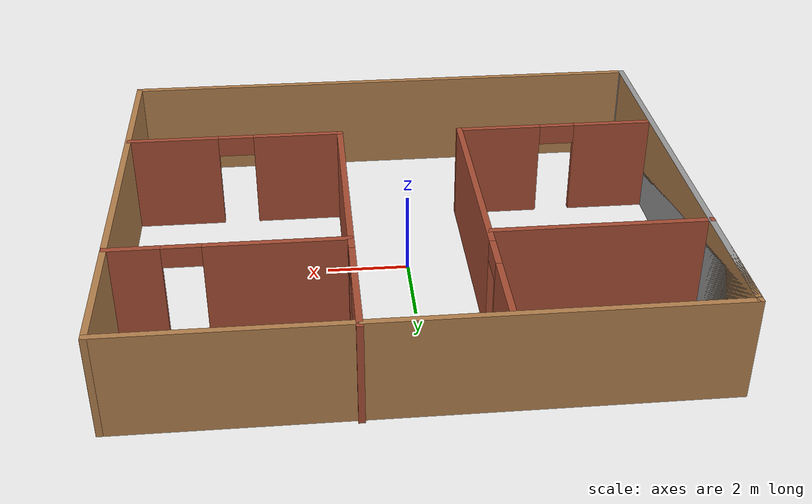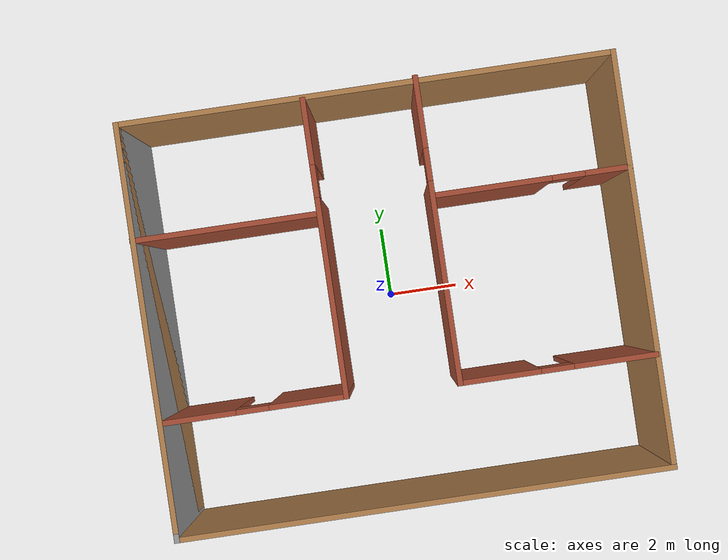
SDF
<?xml version='1.0'?>
<sdf version='1.7'>
  <model name='my_florr'>
    <pose>0.106245 -0.028154 0 0 -0 0</pose>
    <link name='Wall_0'>
      <collision name='Wall_0_Collision'>
        <geometry>
          <box>
            <size>11.25 0.15 2.5</size>
          </box>
        </geometry>
        <pose>0 0 1.25 0 -0 0</pose>
      </collision>
      <visual name='Wall_0_Visual'>
        <pose>0 0 1.25 0 -0 0</pose>
        <geometry>
          <box>
            <size>11.25 0.15 2.5</size>
          </box>
        </geometry>
        <material>
          <script>
            <uri>file://media/materials/scripts/gazebo.material</uri>
            <name>Gazebo/Wood</name>
          </script>
          <ambient>1 1 1 1</ambient>
        </material>
        <meta>
          <layer>0</layer>
        </meta>
      </visual>
      <pose>-6.79479 0.08263 0 0 -0 -1.5708</pose>
    </link>
    <link name='Wall_12'>
      <pose>-1.69508 1.51528 0 0 -0 -1.5708</pose>
      <visual name='Wall_12_Visual_0'>
        <pose>-3.20481 0 1.25 0 -0 0</pose>
        <geometry>
          <box>
            <size>1.84037 0.15 2.5</size>
          </box>
        </geometry>
        <material>
          <script>
            <uri>file://media/materials/scripts/gazebo.material</uri>
            <name>Gazebo/Bricks</name>
          </script>
          <ambient>1 1 1 1</ambient>
        </material>
        <meta>
          <layer>0</layer>
        </meta>
      </visual>
      <collision name='Wall_12_Collision_0'>
        <geometry>
          <box>
            <size>1.84037 0.15 2.5</size>
          </box>
        </geometry>
        <pose>-3.20481 0 1.25 0 -0 0</pose>
      </collision>
      <visual name='Wall_12_Visual_1'>
        <pose>1.37018 0 1.25 0 -0 0</pose>
        <geometry>
          <box>
            <size>5.50963 0.15 2.5</size>
          </box>
        </geometry>
        <material>
          <script>
            <uri>file://media/materials/scripts/gazebo.material</uri>
            <name>Gazebo/Bricks</name>
          </script>
          <ambient>1 1 1 1</ambient>
        </material>
        <meta>
          <layer>0</layer>
        </meta>
      </visual>
      <collision name='Wall_12_Collision_1'>
        <geometry>
          <box>
            <size>5.50963 0.15 2.5</size>
          </box>
        </geometry>
        <pose>1.37018 0 1.25 0 -0 0</pose>
      </collision>
      <visual name='Wall_12_Visual_2'>
        <pose>-1.83463 0 2.25 0 -0 0</pose>
        <geometry>
          <box>
            <size>0.9 0.15 0.5</size>
          </box>
        </geometry>
        <material>
          <script>
            <uri>file://media/materials/scripts/gazebo.material</uri>
            <name>Gazebo/Bricks</name>
          </script>
          <ambient>1 1 1 1</ambient>
        </material>
        <meta>
          <layer>0</layer>
        </meta>
      </visual>
      <collision name='Wall_12_Collision_2'>
        <geometry>
          <box>
            <size>0.9 0.15 0.5</size>
          </box>
        </geometry>
        <pose>-1.83463 0 2.25 0 -0 0</pose>
      </collision>
    </link>
    <link name='Wall_13'>
      <pose>-4.24507 -2.53472 0 0 -0 3.14159</pose>
      <visual name='Wall_13_Visual_0'>
        <pose>-1.5298 0 1.25 0 -0 0</pose>
        <geometry>
          <box>
            <size>2.19039 0.15 2.5</size>
          </box>
        </geometry>
        <material>
          <script>
            <uri>file://media/materials/scripts/gazebo.material</uri>
            <name>Gazebo/Bricks</name>
          </script>
          <ambient>1 1 1 1</ambient>
        </material>
        <meta>
          <layer>0</layer>
        </meta>
      </visual>
      <collision name='Wall_13_Collision_0'>
        <geometry>
          <box>
            <size>2.19039 0.15 2.5</size>
          </box>
        </geometry>
        <pose>-1.5298 0 1.25 0 -0 0</pose>
      </collision>
      <visual name='Wall_13_Visual_1'>
        <pose>1.5452 0 1.25 0 -0 0</pose>
        <geometry>
          <box>
            <size>2.15961 0.15 2.5</size>
          </box>
        </geometry>
        <material>
          <script>
            <uri>file://media/materials/scripts/gazebo.material</uri>
            <name>Gazebo/Bricks</name>
          </script>
          <ambient>1 1 1 1</ambient>
        </material>
        <meta>
          <layer>0</layer>
        </meta>
      </visual>
      <collision name='Wall_13_Collision_1'>
        <geometry>
          <box>
            <size>2.15961 0.15 2.5</size>
          </box>
        </geometry>
        <pose>1.5452 0 1.25 0 -0 0</pose>
      </collision>
      <visual name='Wall_13_Visual_2'>
        <pose>0.015391 0 2.25 0 -0 0</pose>
        <geometry>
          <box>
            <size>0.9 0.15 0.5</size>
          </box>
        </geometry>
        <material>
          <script>
            <uri>file://media/materials/scripts/gazebo.material</uri>
            <name>Gazebo/Bricks</name>
          </script>
          <ambient>1 1 1 1</ambient>
        </material>
        <meta>
          <layer>0</layer>
        </meta>
      </visual>
      <collision name='Wall_13_Collision_2'>
        <geometry>
          <box>
            <size>0.9 0.15 0.5</size>
          </box>
        </geometry>
        <pose>0.015391 0 2.25 0 -0 0</pose>
      </collision>
    </link>
    <link name='Wall_15'>
      <collision name='Wall_15_Collision'>
        <geometry>
          <box>
            <size>5.25 0.15 2.5</size>
          </box>
        </geometry>
        <pose>0 0 1.25 0 -0 0</pose>
      </collision>
      <visual name='Wall_15_Visual'>
        <pose>0 0 1.25 0 -0 0</pose>
        <geometry>
          <box>
            <size>5.25 0.15 2.5</size>
          </box>
        </geometry>
        <material>
          <script>
            <uri>file://media/materials/scripts/gazebo.material</uri>
            <name>Gazebo/Bricks</name>
          </script>
          <ambient>1 1 1 1</ambient>
        </material>
        <meta>
          <layer>0</layer>
        </meta>
      </visual>
      <pose>-4.25521 2.4627 0 0 -0 0</pose>
    </link>
    <link name='Wall_17'>
      <pose>1.40751 1.54237 0 0 -0 -1.5708</pose>
      <visual name='Wall_17_Visual_0'>
        <pose>-3.25377 0 1.25 0 -0 0</pose>
        <geometry>
          <box>
            <size>1.99246 0.15 2.5</size>
          </box>
        </geometry>
        <material>
          <script>
            <uri>file://media/materials/scripts/gazebo.material</uri>
            <name>Gazebo/Bricks</name>
          </script>
          <ambient>1 1 1 1</ambient>
        </material>
        <meta>
          <layer>0</layer>
        </meta>
      </visual>
      <collision name='Wall_17_Collision_0'>
        <geometry>
          <box>
            <size>1.99246 0.15 2.5</size>
          </box>
        </geometry>
        <pose>-3.25377 0 1.25 0 -0 0</pose>
      </collision>
      <visual name='Wall_17_Visual_1'>
        <pose>1.44623 0 1.25 0 -0 0</pose>
        <geometry>
          <box>
            <size>5.60754 0.15 2.5</size>
          </box>
        </geometry>
        <material>
          <script>
            <uri>file://media/materials/scripts/gazebo.material</uri>
            <name>Gazebo/Bricks</name>
          </script>
          <ambient>1 1 1 1</ambient>
        </material>
        <meta>
          <layer>0</layer>
        </meta>
      </visual>
      <collision name='Wall_17_Collision_1'>
        <geometry>
          <box>
            <size>5.60754 0.15 2.5</size>
          </box>
        </geometry>
        <pose>1.44623 0 1.25 0 -0 0</pose>
      </collision>
      <visual name='Wall_17_Visual_2'>
        <pose>-1.80754 0 2.25 0 -0 0</pose>
        <geometry>
          <box>
            <size>0.9 0.15 0.5</size>
          </box>
        </geometry>
        <material>
          <script>
            <uri>file://media/materials/scripts/gazebo.material</uri>
            <name>Gazebo/Bricks</name>
          </script>
          <ambient>1 1 1 1</ambient>
        </material>
        <meta>
          <layer>0</layer>
        </meta>
      </visual>
      <collision name='Wall_17_Collision_2'>
        <geometry>
          <box>
            <size>0.9 0.15 0.5</size>
          </box>
        </geometry>
        <pose>-1.80754 0 2.25 0 -0 0</pose>
      </collision>
    </link>
    <link name='Wall_18'>
      <pose>4.08251 -2.63263 0 0 -0 0</pose>
      <visual name='Wall_18_Visual_0'>
        <pose>-1.60284 0 1.25 0 -0 0</pose>
        <geometry>
          <box>
            <size>2.29433 0.15 2.5</size>
          </box>
        </geometry>
        <material>
          <script>
            <uri>file://media/materials/scripts/gazebo.material</uri>
            <name>Gazebo/Bricks</name>
          </script>
          <ambient>1 1 1 1</ambient>
        </material>
        <meta>
          <layer>0</layer>
        </meta>
      </visual>
      <collision name='Wall_18_Collision_0'>
        <geometry>
          <box>
            <size>2.29433 0.15 2.5</size>
          </box>
        </geometry>
        <pose>-1.60284 0 1.25 0 -0 0</pose>
      </collision>
      <visual name='Wall_18_Visual_1'>
        <pose>1.59716 0 1.25 0 -0 0</pose>
        <geometry>
          <box>
            <size>2.30567 0.15 2.5</size>
          </box>
        </geometry>
        <material>
          <script>
            <uri>file://media/materials/scripts/gazebo.material</uri>
            <name>Gazebo/Bricks</name>
          </script>
          <ambient>1 1 1 1</ambient>
        </material>
        <meta>
          <layer>0</layer>
        </meta>
      </visual>
      <collision name='Wall_18_Collision_1'>
        <geometry>
          <box>
            <size>2.30567 0.15 2.5</size>
          </box>
        </geometry>
        <pose>1.59716 0 1.25 0 -0 0</pose>
      </collision>
      <visual name='Wall_18_Visual_2'>
        <pose>-0.005671 0 2.25 0 -0 0</pose>
        <geometry>
          <box>
            <size>0.9 0.15 0.5</size>
          </box>
        </geometry>
        <material>
          <script>
            <uri>file://media/materials/scripts/gazebo.material</uri>
            <name>Gazebo/Bricks</name>
          </script>
          <ambient>1 1 1 1</ambient>
        </material>
        <meta>
          <layer>0</layer>
        </meta>
      </visual>
      <collision name='Wall_18_Collision_2'>
        <geometry>
          <box>
            <size>0.9 0.15 0.5</size>
          </box>
        </geometry>
        <pose>-0.005671 0 2.25 0 -0 0</pose>
      </collision>
    </link>
    <link name='Wall_2'>
      <collision name='Wall_2_Collision'>
        <geometry>
          <box>
            <size>11.5 0.15 2.5</size>
          </box>
        </geometry>
        <pose>0 0 1.25 0 -0 0</pose>
      </collision>
      <visual name='Wall_2_Visual'>
        <pose>0 0 1.25 0 -0 0</pose>
        <geometry>
          <box>
            <size>11.5 0.15 2.5</size>
          </box>
        </geometry>
        <material>
          <script>
            <uri>file://media/materials/scripts/gazebo.material</uri>
            <name>Gazebo/Grey</name>
          </script>
          <ambient>1 1 1 1</ambient>
        </material>
        <meta>
          <layer>0</layer>
        </meta>
      </visual>
      <pose>-6.79479 -0.04237 0 0 -0 -1.5708</pose>
    </link>
    <link name='Wall_20'>
      <pose>4.11293 2.49311 0 0 -0 0</pose>
      <visual name='Wall_20_Visual_0'>
        <pose>-1.09203 0 1.25 0 -0 0</pose>
        <geometry>
          <box>
            <size>3.31594 0.15 2.5</size>
          </box>
        </geometry>
        <material>
          <script>
            <uri>file://media/materials/scripts/gazebo.material</uri>
            <name>Gazebo/Bricks</name>
          </script>
          <ambient>1 1 1 1</ambient>
        </material>
        <meta>
          <layer>0</layer>
        </meta>
      </visual>
      <collision name='Wall_20_Collision_0'>
        <geometry>
          <box>
            <size>3.31594 0.15 2.5</size>
          </box>
        </geometry>
        <pose>-1.09203 0 1.25 0 -0 0</pose>
      </collision>
      <visual name='Wall_20_Visual_1'>
        <pose>2.10797 0 1.25 0 -0 0</pose>
        <geometry>
          <box>
            <size>1.28406 0.15 2.5</size>
          </box>
        </geometry>
        <material>
          <script>
            <uri>file://media/materials/scripts/gazebo.material</uri>
            <name>Gazebo/Bricks</name>
          </script>
          <ambient>1 1 1 1</ambient>
        </material>
        <meta>
          <layer>0</layer>
        </meta>
      </visual>
      <collision name='Wall_20_Collision_1'>
        <geometry>
          <box>
            <size>1.28406 0.15 2.5</size>
          </box>
        </geometry>
        <pose>2.10797 0 1.25 0 -0 0</pose>
      </collision>
      <visual name='Wall_20_Visual_2'>
        <pose>1.01594 0 2.25 0 -0 0</pose>
        <geometry>
          <box>
            <size>0.9 0.15 0.5</size>
          </box>
        </geometry>
        <material>
          <script>
            <uri>file://media/materials/scripts/gazebo.material</uri>
            <name>Gazebo/Bricks</name>
          </script>
          <ambient>1 1 1 1</ambient>
        </material>
        <meta>
          <layer>0</layer>
        </meta>
      </visual>
      <collision name='Wall_20_Collision_2'>
        <geometry>
          <box>
            <size>0.9 0.15 0.5</size>
          </box>
        </geometry>
        <pose>1.01594 0 2.25 0 -0 0</pose>
      </collision>
    </link>
    <link name='Wall_3'>
      <collision name='Wall_3_Collision'>
        <geometry>
          <box>
            <size>13.75 0.15 2.5</size>
          </box>
        </geometry>
        <pose>0 0 1.25 0 -0 0</pose>
      </collision>
      <visual name='Wall_3_Visual'>
        <pose>0 0 1.25 0 -0 0</pose>
        <geometry>
          <box>
            <size>13.75 0.15 2.5</size>
          </box>
        </geometry>
        <material>
          <script>
            <uri>file://media/materials/scripts/gazebo.material</uri>
            <name>Gazebo/Wood</name>
          </script>
          <ambient>1 1 1 1</ambient>
        </material>
        <meta>
          <layer>0</layer>
        </meta>
      </visual>
      <pose>0.005214 -5.71737 0 0 -0 0</pose>
    </link>
    <link name='Wall_4'>
      <collision name='Wall_4_Collision'>
        <geometry>
          <box>
            <size>11.5 0.15 2.5</size>
          </box>
        </geometry>
        <pose>0 0 1.25 0 -0 0</pose>
      </collision>
      <visual name='Wall_4_Visual'>
        <pose>0 0 1.25 0 -0 0</pose>
        <geometry>
          <box>
            <size>11.5 0.15 2.5</size>
          </box>
        </geometry>
        <material>
          <script>
            <uri>file://media/materials/scripts/gazebo.material</uri>
            <name>Gazebo/Wood</name>
          </script>
          <ambient>1 1 1 1</ambient>
        </material>
        <meta>
          <layer>0</layer>
        </meta>
      </visual>
      <pose>6.80521 -0.04237 0 0 -0 1.5708</pose>
    </link>
    <link name='Wall_5'>
      <collision name='Wall_5_Collision'>
        <geometry>
          <box>
            <size>13.75 0.15 2.5</size>
          </box>
        </geometry>
        <pose>0 0 1.25 0 -0 0</pose>
      </collision>
      <visual name='Wall_5_Visual'>
        <pose>0 0 1.25 0 -0 0</pose>
        <geometry>
          <box>
            <size>13.75 0.15 2.5</size>
          </box>
        </geometry>
        <material>
          <script>
            <uri>file://media/materials/scripts/gazebo.material</uri>
            <name>Gazebo/Wood</name>
          </script>
          <ambient>1 1 1 1</ambient>
        </material>
        <meta>
          <layer>0</layer>
        </meta>
      </visual>
      <pose>0.005214 5.63263 0 0 -0 3.14159</pose>
    </link>
    <static>1</static>
  </model>
</sdf>
